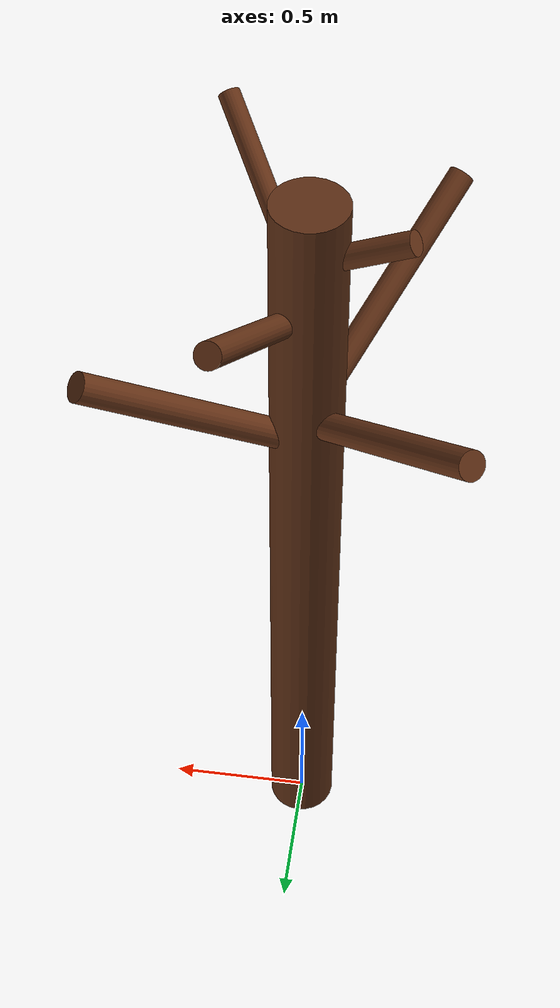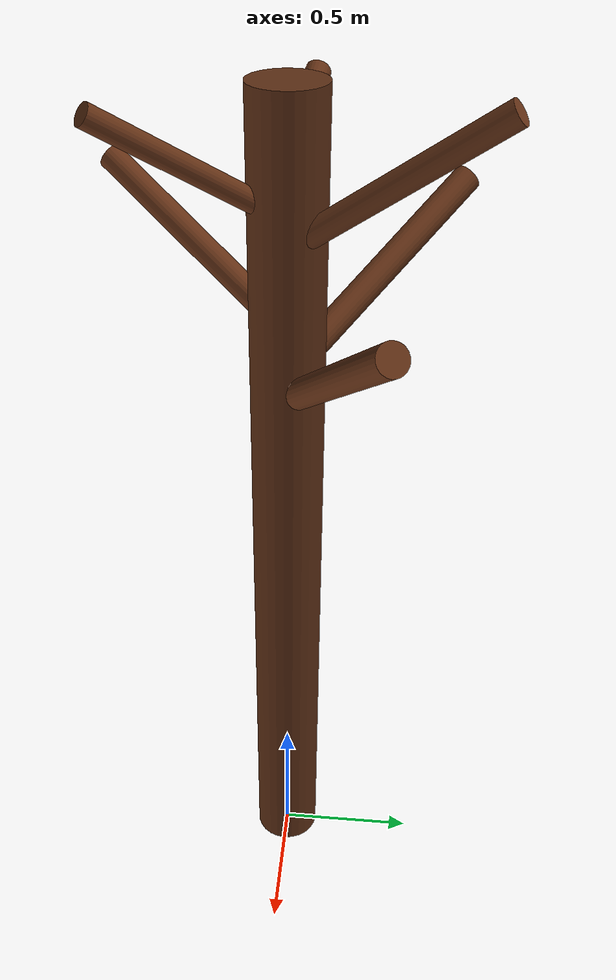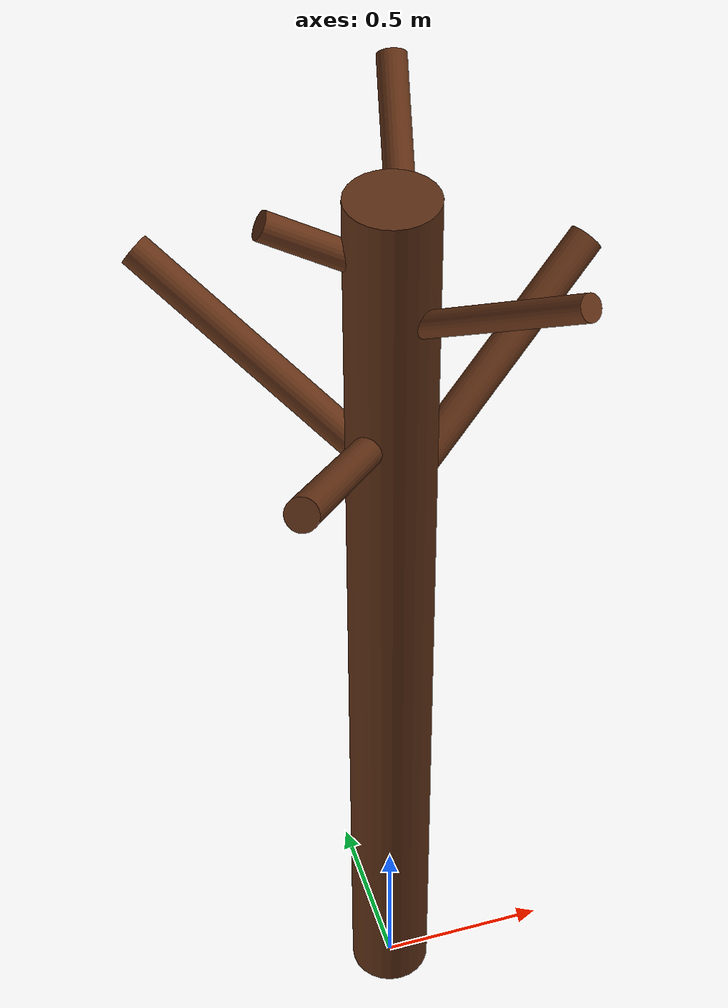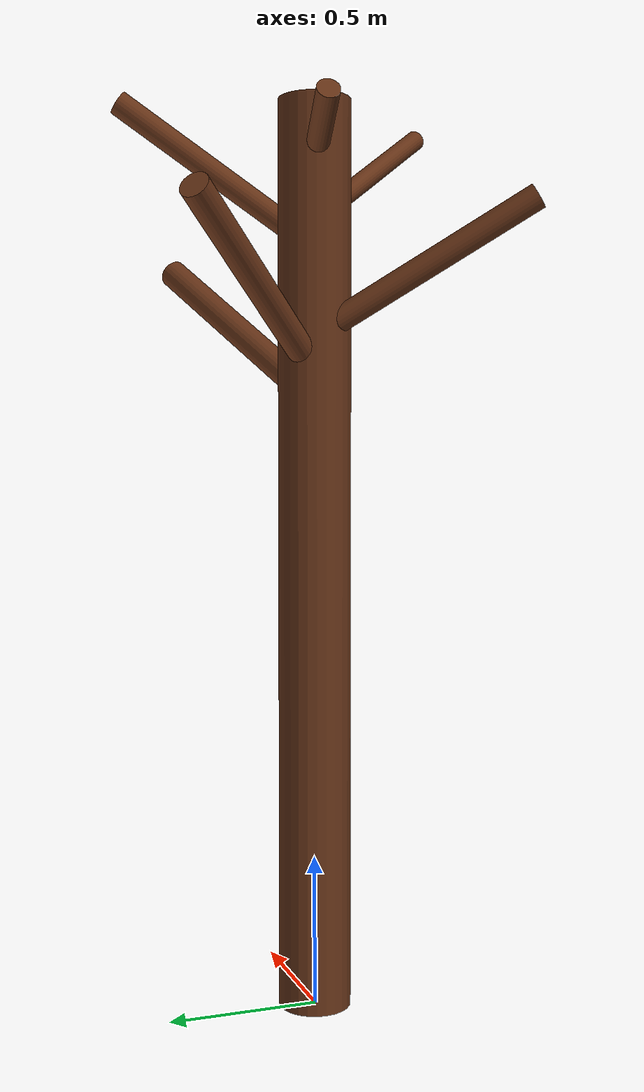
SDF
<?xml version="1.0" encoding="UTF-8"?>
<sdf version="1.9">
  <model name="test_tree">

    <!-- Step 10 test tree (v3)                                 -->
    <!-- - lower branches: slightly longer / thicker            -->
    <!-- - upper branches: slightly shorter / thinner           -->
    <!-- - branches distributed more evenly around trunk        -->
    <!-- - all branches inserted slightly into trunk            -->
    <!-- - target branch split: fixed wood inner + detachable red outer -->

    <static>false</static>
    <self_collide>false</self_collide>

    <!-- Trunk                                                  -->

    <link name="trunk_link">
      <pose>0 0 1.50 0 0 0</pose>

      <inertial>
        <mass>40.0</mass>
        <inertia>
          <ixx>30.0</ixx>
          <iyy>30.0</iyy>
          <izz>0.30</izz>
        </inertia>
      </inertial>

      <collision name="trunk_collision">
        <geometry>
          <cylinder>
            <radius>0.12</radius>
            <length>3.00</length>
          </cylinder>
        </geometry>
      </collision>

      <visual name="trunk_visual">
        <geometry>
          <cylinder>
            <radius>0.12</radius>
            <length>3.00</length>
          </cylinder>
        </geometry>
        <material>
          <ambient>0.28 0.14 0.06 1</ambient>
          <diffuse>0.36 0.18 0.08 1</diffuse>
          <specular>0.08 0.08 0.08 1</specular>
        </material>
      </visual>
    </link>

    <joint name="trunk_world_joint" type="fixed">
      <parent>world</parent>
      <child>trunk_link</child>
    </joint>

    <!-- Branch 1                                               -->
    <!-- lower / front-right, longer and thicker               -->

    <link name="branch_1">
      <pose>0.285 0.145 2.250 0 0.98 0.47</pose>

      <inertial>
        <mass>2.2</mass>
        <inertia>
          <ixx>0.20</ixx>
          <iyy>0.20</iyy>
          <izz>0.01</izz>
        </inertia>
      </inertial>

      <collision name="branch_1_collision">
        <geometry>
          <cylinder>
            <radius>0.048</radius>
            <length>0.95</length>
          </cylinder>
        </geometry>
      </collision>

      <visual name="branch_1_visual">
        <geometry>
          <cylinder>
            <radius>0.048</radius>
            <length>0.95</length>
          </cylinder>
        </geometry>
        <material>
          <ambient>0.30 0.15 0.07 1</ambient>
          <diffuse>0.40 0.20 0.09 1</diffuse>
        </material>
      </visual>
    </link>

    <joint name="branch_1_joint" type="fixed">
      <parent>trunk_link</parent>
      <child>branch_1</child>
    </joint>

    <!-- Branch 2                                               -->
    <!-- lower / left-rear, longer and thicker                 -->

    <link name="branch_2">
      <pose>-0.255 0.260 2.350 0 1.02 2.35</pose>

      <inertial>
        <mass>2.0</mass>
        <inertia>
          <ixx>0.18</ixx>
          <iyy>0.18</iyy>
          <izz>0.01</izz>
        </inertia>
      </inertial>

      <collision name="branch_2_collision">
        <geometry>
          <cylinder>
            <radius>0.046</radius>
            <length>0.90</length>
          </cylinder>
        </geometry>
      </collision>

      <visual name="branch_2_visual">
        <geometry>
          <cylinder>
            <radius>0.046</radius>
            <length>0.90</length>
          </cylinder>
        </geometry>
        <material>
          <ambient>0.30 0.15 0.07 1</ambient>
          <diffuse>0.40 0.20 0.09 1</diffuse>
        </material>
      </visual>
    </link>

    <joint name="branch_2_joint" type="fixed">
      <parent>trunk_link</parent>
      <child>branch_2</child>
    </joint>

    <!-- Branch 4                                               -->
    <!-- middle / rear-right                                   -->

    <link name="branch_4">
      <pose>-0.220 -0.300 2.450 0 1.04 -2.10</pose>

      <inertial>
        <mass>1.8</mass>
        <inertia>
          <ixx>0.15</ixx>
          <iyy>0.15</iyy>
          <izz>0.008</izz>
        </inertia>
      </inertial>

      <collision name="branch_4_collision">
        <geometry>
          <cylinder>
            <radius>0.042</radius>
            <length>0.82</length>
          </cylinder>
        </geometry>
      </collision>

      <visual name="branch_4_visual">
        <geometry>
          <cylinder>
            <radius>0.042</radius>
            <length>0.82</length>
          </cylinder>
        </geometry>
        <material>
          <ambient>0.30 0.15 0.07 1</ambient>
          <diffuse>0.40 0.20 0.09 1</diffuse>
        </material>
      </visual>
    </link>

    <joint name="branch_4_joint" type="fixed">
      <parent>trunk_link</parent>
      <child>branch_4</child>
    </joint>

    <!-- Branch 5                                               -->
    <!-- middle / front-left                                   -->

    <link name="branch_5">
      <pose>0.115 0.295 2.760 0 0.96 1.34</pose>

      <inertial>
        <mass>1.6</mass>
        <inertia>
          <ixx>0.13</ixx>
          <iyy>0.13</iyy>
          <izz>0.007</izz>
        </inertia>
      </inertial>

      <collision name="branch_5_collision">
        <geometry>
          <cylinder>
            <radius>0.040</radius>
            <length>0.78</length>
          </cylinder>
        </geometry>
      </collision>

      <visual name="branch_5_visual">
        <geometry>
          <cylinder>
            <radius>0.040</radius>
            <length>0.78</length>
          </cylinder>
        </geometry>
        <material>
          <ambient>0.30 0.15 0.07 1</ambient>
          <diffuse>0.40 0.20 0.09 1</diffuse>
        </material>
      </visual>
    </link>

    <joint name="branch_5_joint" type="fixed">
      <parent>trunk_link</parent>
      <child>branch_5</child>
    </joint>

    <!-- Branch 6                                               -->
    <!-- high / right-rear, shorter and thinner                -->

    <link name="branch_6">
      <pose>0.150 -0.245 2.800 0 1.01 -1.00</pose>

      <inertial>
        <mass>1.3</mass>
        <inertia>
          <ixx>0.11</ixx>
          <iyy>0.11</iyy>
          <izz>0.006</izz>
        </inertia>
      </inertial>

      <collision name="branch_6_collision">
        <geometry>
          <cylinder>
            <radius>0.034</radius>
            <length>0.68</length>
          </cylinder>
        </geometry>
      </collision>

      <visual name="branch_6_visual">
        <geometry>
          <cylinder>
            <radius>0.034</radius>
            <length>0.68</length>
          </cylinder>
        </geometry>
        <material>
          <ambient>0.30 0.15 0.07 1</ambient>
          <diffuse>0.40 0.20 0.09 1</diffuse>
        </material>
      </visual>
    </link>

    <joint name="branch_6_joint" type="fixed">
      <parent>trunk_link</parent>
      <child>branch_6</child>
    </joint>

    <!-- Target branch inner / stump segment                     -->
    <!-- This 0.40 m wood-colored part stays permanently fixed   -->
    <!-- to the tree. Its local frame is exactly the old         -->
    <!-- target_branch frame, so the outer detachable red part   -->
    <!-- still lines up at local z = 0.                          -->

    <link name="target_branch_inner_link">
      <pose>-0.305 0.060 2.950 0 1.08 2.961593</pose>

      <inertial>
        <pose>0 0 -0.20 0 0 0</pose>
        <mass>1.2</mass>
        <inertia>
          <ixx>0.0164</ixx>
          <iyy>0.0164</iyy>
          <izz>0.00087</izz>
        </inertia>
      </inertial>

      <collision name="target_branch_inner_collision">
        <pose>0 0 -0.20 0 0 0</pose>
        <geometry>
          <cylinder>
            <radius>0.038</radius>
            <length>0.40</length>
          </cylinder>
        </geometry>
      </collision>

      <visual name="target_branch_inner_visual">
        <pose>0 0 -0.20 0 0 0</pose>
        <geometry>
          <cylinder>
            <radius>0.038</radius>
            <length>0.40</length>
          </cylinder>
        </geometry>
        <material>
          <ambient>0.30 0.15 0.07 1</ambient>
          <diffuse>0.40 0.20 0.09 1</diffuse>
        </material>
      </visual>
    </link>

    <joint name="target_branch_inner_joint" type="fixed">
      <parent>trunk_link</parent>
      <child>target_branch_inner_link</child>
    </joint>

    <!-- Detachable red outer segment                           -->
    <!-- target_branch now contains ONLY the outer 0.30 m red   -->
    <!-- segment. Detaching therefore drops only the red part.  -->

    <plugin
      filename="gz-sim-detachable-joint-system"
      name="gz::sim::systems::DetachableJoint">

      <parent_link>target_branch_inner_link</parent_link>
      <child_model>target_branch</child_model>
      <child_link>target_branch_link</child_link>

      <detach_topic>/target_branch/detach</detach_topic>
      <attach_topic>/target_branch/attach</attach_topic>
      <output_topic>/target_branch/state</output_topic>

    </plugin>

  </model>
</sdf>
